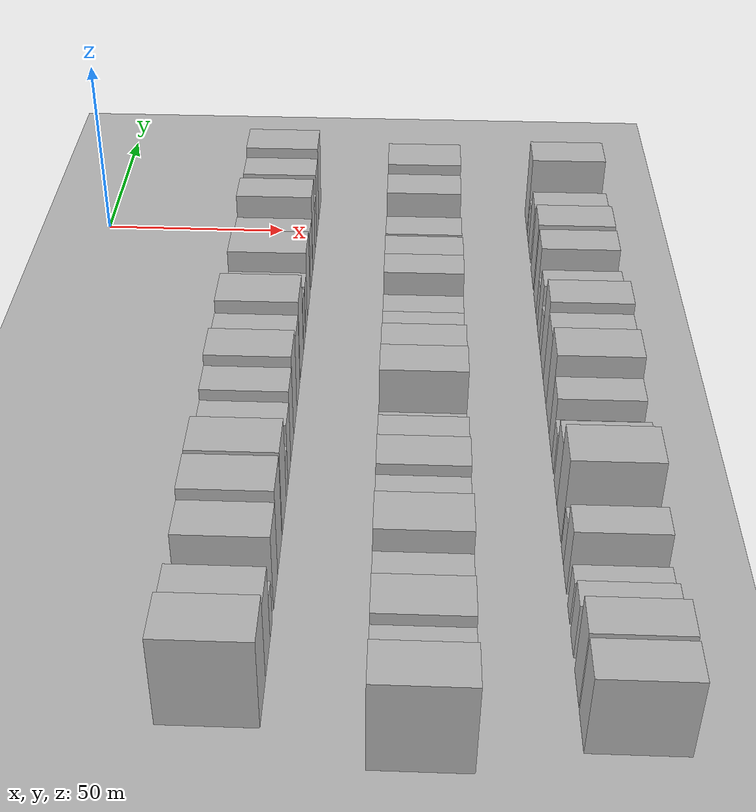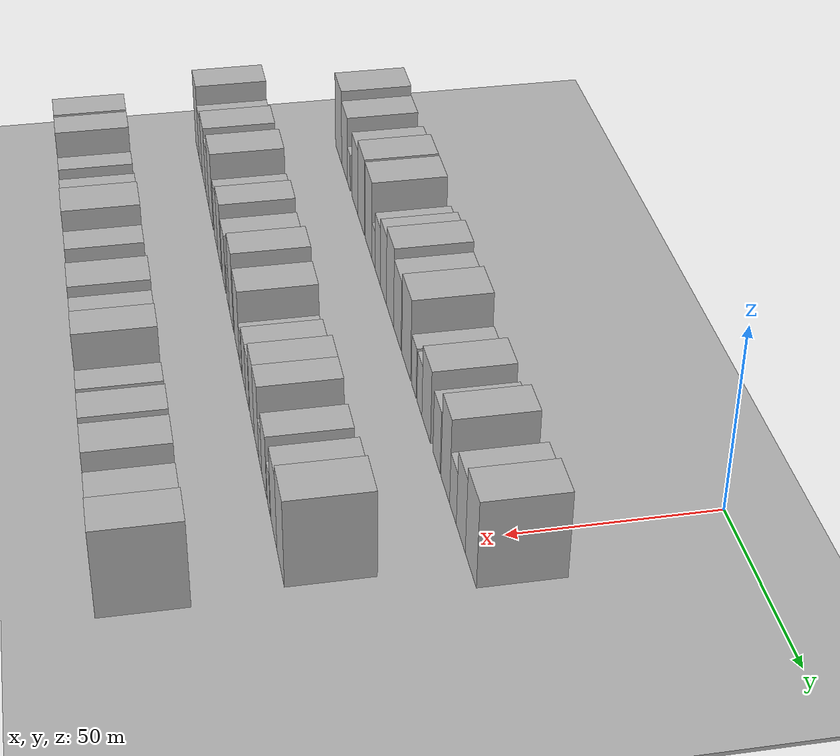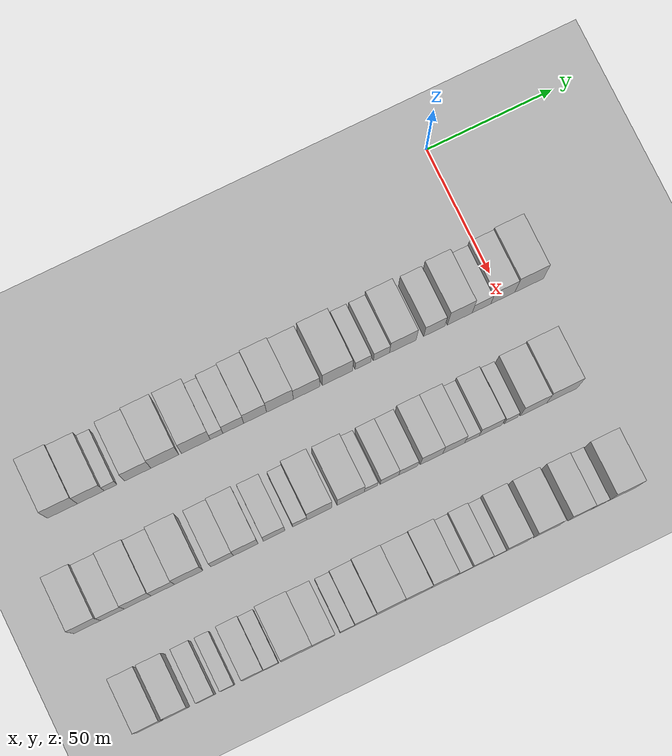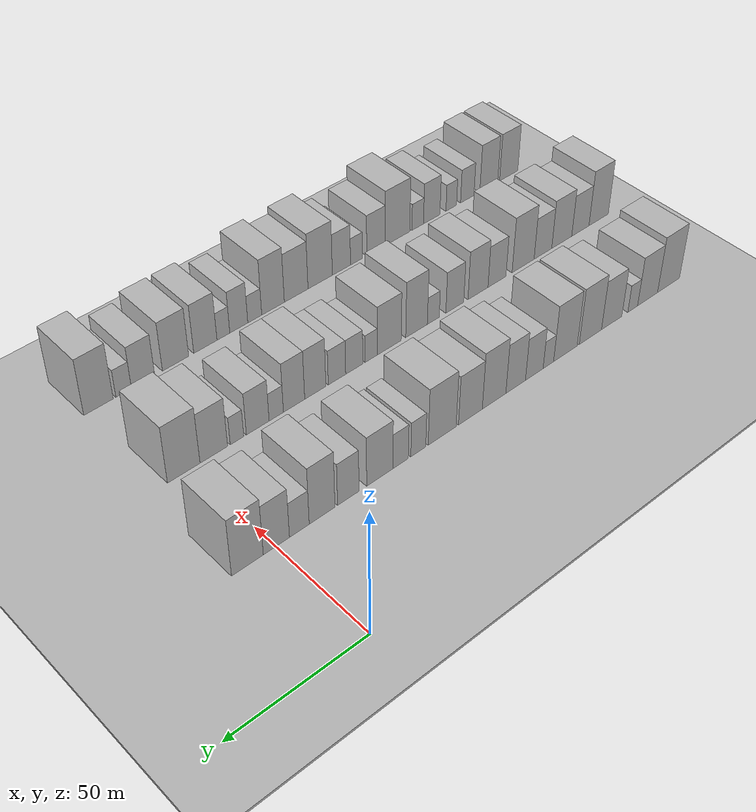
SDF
<sdf version="1.6">
 <world name="default">
  <include><name>ground_plane_1</name><uri>model://HANNAS_ground_plane</uri></include>
  <include>
   <name>ground_plane_2</name>
   <uri>model://HANNAS_ground_plane</uri>
   <pose>100 0 0  0 0 0</pose>
  </include>
  <model name="building_24">
   <static>1</static>
   <pose>50.0000 -170.7666 0 0.000000 0.000000 0.000000</pose>
   <link name="link">
    <pose>0 0 12.00 0 0 0</pose>
    <collision name="collision"><geometry><box><size>20.0000 11.4638 24.0000</size></box></geometry></collision>
    <visual name="visual">
     <cast_shadows>0</cast_shadows>
     <geometry><box><size>20.0000 11.4638 24.0000</size></box></geometry>
     <material>
      <script>
       <uri>model://HANNAS_wall/materials/scripts</uri>
       <uri>model://HANNAS_wall/materials/textures</uri>
       <name>vrc/HANNAS_wall</name>
      </script>
     </material>
    </visual>
   </link>
  </model>
  <model name="building_25">
   <static>1</static>
   <pose>50.0000 -159.9259 0 0.000000 0.000000 0.000000</pose>
   <link name="link">
    <pose>0 0 10.50 0 0 0</pose>
    <collision name="collision"><geometry><box><size>20.0000 10.2175 21.0000</size></box></geometry></collision>
    <visual name="visual">
     <cast_shadows>0</cast_shadows>
     <geometry><box><size>20.0000 10.2175 21.0000</size></box></geometry>
     <material>
      <script>
       <uri>model://HANNAS_wall/materials/scripts</uri>
       <uri>model://HANNAS_wall/materials/textures</uri>
       <name>vrc/HANNAS_wall</name>
      </script>
     </material>
    </visual>
   </link>
  </model>
  <model name="building_26">
   <static>1</static>
   <pose>50.0000 -152.3563 0 0.000000 0.000000 0.000000</pose>
   <link name="link">
    <pose>0 0 6.00 0 0 0</pose>
    <collision name="collision"><geometry><box><size>20.0000 4.9218 12.0000</size></box></geometry></collision>
    <visual name="visual">
     <cast_shadows>0</cast_shadows>
     <geometry><box><size>20.0000 4.9218 12.0000</size></box></geometry>
     <material>
      <script>
       <uri>model://HANNAS_wall/materials/scripts</uri>
       <uri>model://HANNAS_wall/materials/textures</uri>
       <name>vrc/HANNAS_wall</name>
      </script>
     </material>
    </visual>
   </link>
  </model>
  <model name="building_27">
   <static>1</static>
   <pose>50.0000 -141.8743 0 0.000000 0.000000 0.000000</pose>
   <link name="link">
    <pose>0 0 10.50 0 0 0</pose>
    <collision name="collision"><geometry><box><size>20.0000 10.0421 21.0000</size></box></geometry></collision>
    <visual name="visual">
     <cast_shadows>0</cast_shadows>
     <geometry><box><size>20.0000 10.0421 21.0000</size></box></geometry>
     <material>
      <script>
       <uri>model://HANNAS_wall/materials/scripts</uri>
       <uri>model://HANNAS_wall/materials/textures</uri>
       <name>vrc/HANNAS_wall</name>
      </script>
     </material>
    </visual>
   </link>
  </model>
  <model name="building_28">
   <static>1</static>
   <pose>50.0000 -131.4665 0 0.000000 0.000000 0.000000</pose>
   <link name="link">
    <pose>0 0 12.00 0 0 0</pose>
    <collision name="collision"><geometry><box><size>20.0000 10.7736 24.0000</size></box></geometry></collision>
    <visual name="visual">
     <cast_shadows>0</cast_shadows>
     <geometry><box><size>20.0000 10.7736 24.0000</size></box></geometry>
     <material>
      <script>
       <uri>model://HANNAS_wall/materials/scripts</uri>
       <uri>model://HANNAS_wall/materials/textures</uri>
       <name>vrc/HANNAS_wall</name>
      </script>
     </material>
    </visual>
   </link>
  </model>
  <model name="building_29">
   <static>1</static>
   <pose>50.0000 -119.5319 0 0.000000 0.000000 0.000000</pose>
   <link name="link">
    <pose>0 0 12.00 0 0 0</pose>
    <collision name="collision"><geometry><box><size>20.0000 11.0957 24.0000</size></box></geometry></collision>
    <visual name="visual">
     <cast_shadows>0</cast_shadows>
     <geometry><box><size>20.0000 11.0957 24.0000</size></box></geometry>
     <material>
      <script>
       <uri>model://HANNAS_wall/materials/scripts</uri>
       <uri>model://HANNAS_wall/materials/textures</uri>
       <name>vrc/HANNAS_wall</name>
      </script>
     </material>
    </visual>
   </link>
  </model>
  <model name="building_30">
   <static>1</static>
   <pose>50.0000 -111.5464 0 0.000000 0.000000 0.000000</pose>
   <link name="link">
    <pose>0 0 6.00 0 0 0</pose>
    <collision name="collision"><geometry><box><size>20.0000 4.8752 12.0000</size></box></geometry></collision>
    <visual name="visual">
     <cast_shadows>0</cast_shadows>
     <geometry><box><size>20.0000 4.8752 12.0000</size></box></geometry>
     <material>
      <script>
       <uri>model://HANNAS_wall/materials/scripts</uri>
       <uri>model://HANNAS_wall/materials/textures</uri>
       <name>vrc/HANNAS_wall</name>
      </script>
     </material>
    </visual>
   </link>
  </model>
  <model name="building_31">
   <static>1</static>
   <pose>50.0000 -105.0671 0 0.000000 0.000000 0.000000</pose>
   <link name="link">
    <pose>0 0 9.00 0 0 0</pose>
    <collision name="collision"><geometry><box><size>20.0000 8.0835 18.0000</size></box></geometry></collision>
    <visual name="visual">
     <cast_shadows>0</cast_shadows>
     <geometry><box><size>20.0000 8.0835 18.0000</size></box></geometry>
     <material>
      <script>
       <uri>model://HANNAS_wall/materials/scripts</uri>
       <uri>model://HANNAS_wall/materials/textures</uri>
       <name>vrc/HANNAS_wall</name>
      </script>
     </material>
    </visual>
   </link>
  </model>
  <model name="building_32">
   <static>1</static>
   <pose>50.0000 -96.6124 0 0.000000 0.000000 0.000000</pose>
   <link name="link">
    <pose>0 0 10.50 0 0 0</pose>
    <collision name="collision"><geometry><box><size>20.0000 8.8259 21.0000</size></box></geometry></collision>
    <visual name="visual">
     <cast_shadows>0</cast_shadows>
     <geometry><box><size>20.0000 8.8259 21.0000</size></box></geometry>
     <material>
      <script>
       <uri>model://HANNAS_wall/materials/scripts</uri>
       <uri>model://HANNAS_wall/materials/textures</uri>
       <name>vrc/HANNAS_wall</name>
      </script>
     </material>
    </visual>
   </link>
  </model>
  <model name="building_33">
   <static>1</static>
   <pose>50.0000 -87.0101 0 0.000000 0.000000 0.000000</pose>
   <link name="link">
    <pose>0 0 12.00 0 0 0</pose>
    <collision name="collision"><geometry><box><size>20.0000 10.3787 24.0000</size></box></geometry></collision>
    <visual name="visual">
     <cast_shadows>0</cast_shadows>
     <geometry><box><size>20.0000 10.3787 24.0000</size></box></geometry>
     <material>
      <script>
       <uri>model://HANNAS_wall/materials/scripts</uri>
       <uri>model://HANNAS_wall/materials/textures</uri>
       <name>vrc/HANNAS_wall</name>
      </script>
     </material>
    </visual>
   </link>
  </model>
  <model name="building_34">
   <static>1</static>
   <pose>50.0000 -76.6844 0 0.000000 0.000000 0.000000</pose>
   <link name="link">
    <pose>0 0 10.50 0 0 0</pose>
    <collision name="collision"><geometry><box><size>20.0000 10.2727 21.0000</size></box></geometry></collision>
    <visual name="visual">
     <cast_shadows>0</cast_shadows>
     <geometry><box><size>20.0000 10.2727 21.0000</size></box></geometry>
     <material>
      <script>
       <uri>model://HANNAS_wall/materials/scripts</uri>
       <uri>model://HANNAS_wall/materials/textures</uri>
       <name>vrc/HANNAS_wall</name>
      </script>
     </material>
    </visual>
   </link>
  </model>
  <model name="building_35">
   <static>1</static>
   <pose>50.0000 -64.6732 0 0.000000 0.000000 0.000000</pose>
   <link name="link">
    <pose>0 0 12.00 0 0 0</pose>
    <collision name="collision"><geometry><box><size>20.0000 11.7496 24.0000</size></box></geometry></collision>
    <visual name="visual">
     <cast_shadows>0</cast_shadows>
     <geometry><box><size>20.0000 11.7496 24.0000</size></box></geometry>
     <material>
      <script>
       <uri>model://HANNAS_wall/materials/scripts</uri>
       <uri>model://HANNAS_wall/materials/textures</uri>
       <name>vrc/HANNAS_wall</name>
      </script>
     </material>
    </visual>
   </link>
  </model>
  <model name="building_36">
   <static>1</static>
   <pose>50.0000 -54.7265 0 0.000000 0.000000 0.000000</pose>
   <link name="link">
    <pose>0 0 7.50 0 0 0</pose>
    <collision name="collision"><geometry><box><size>20.0000 6.1438 15.0000</size></box></geometry></collision>
    <visual name="visual">
     <cast_shadows>0</cast_shadows>
     <geometry><box><size>20.0000 6.1438 15.0000</size></box></geometry>
     <material>
      <script>
       <uri>model://HANNAS_wall/materials/scripts</uri>
       <uri>model://HANNAS_wall/materials/textures</uri>
       <name>vrc/HANNAS_wall</name>
      </script>
     </material>
    </visual>
   </link>
  </model>
  <model name="building_37">
   <static>1</static>
   <pose>50.0000 -47.5194 0 0.000000 0.000000 0.000000</pose>
   <link name="link">
    <pose>0 0 7.50 0 0 0</pose>
    <collision name="collision"><geometry><box><size>20.0000 6.2705 15.0000</size></box></geometry></collision>
    <visual name="visual">
     <cast_shadows>0</cast_shadows>
     <geometry><box><size>20.0000 6.2705 15.0000</size></box></geometry>
     <material>
      <script>
       <uri>model://HANNAS_wall/materials/scripts</uri>
       <uri>model://HANNAS_wall/materials/textures</uri>
       <name>vrc/HANNAS_wall</name>
      </script>
     </material>
    </visual>
   </link>
  </model>
  <model name="building_38">
   <static>1</static>
   <pose>50.0000 -39.1840 0 0.000000 0.000000 0.000000</pose>
   <link name="link">
    <pose>0 0 10.50 0 0 0</pose>
    <collision name="collision"><geometry><box><size>20.0000 10.4003 21.0000</size></box></geometry></collision>
    <visual name="visual">
     <cast_shadows>0</cast_shadows>
     <geometry><box><size>20.0000 10.4003 21.0000</size></box></geometry>
     <material>
      <script>
       <uri>model://HANNAS_wall/materials/scripts</uri>
       <uri>model://HANNAS_wall/materials/textures</uri>
       <name>vrc/HANNAS_wall</name>
      </script>
     </material>
    </visual>
   </link>
  </model>
  <model name="building_39">
   <static>1</static>
   <pose>50.0000 -26.8468 0 0.000000 0.000000 0.000000</pose>
   <link name="link">
    <pose>0 0 9.00 0 0 0</pose>
    <collision name="collision"><geometry><box><size>20.0000 8.2742 18.0000</size></box></geometry></collision>
    <visual name="visual">
     <cast_shadows>0</cast_shadows>
     <geometry><box><size>20.0000 8.2742 18.0000</size></box></geometry>
     <material>
      <script>
       <uri>model://HANNAS_wall/materials/scripts</uri>
       <uri>model://HANNAS_wall/materials/textures</uri>
       <name>vrc/HANNAS_wall</name>
      </script>
     </material>
    </visual>
   </link>
  </model>
  <model name="building_40">
   <static>1</static>
   <pose>50.0000 -16.8517 0 0.000000 0.000000 0.000000</pose>
   <link name="link">
    <pose>0 0 12.00 0 0 0</pose>
    <collision name="collision"><geometry><box><size>20.0000 9.7160 24.0000</size></box></geometry></collision>
    <visual name="visual">
     <cast_shadows>0</cast_shadows>
     <geometry><box><size>20.0000 9.7160 24.0000</size></box></geometry>
     <material>
      <script>
       <uri>model://HANNAS_wall/materials/scripts</uri>
       <uri>model://HANNAS_wall/materials/textures</uri>
       <name>vrc/HANNAS_wall</name>
      </script>
     </material>
    </visual>
   </link>
  </model>
  <model name="building_41">
   <static>1</static>
   <pose>50.0000 -8.3444 0 0.000000 0.000000 0.000000</pose>
   <link name="link">
    <pose>0 0 7.50 0 0 0</pose>
    <collision name="collision"><geometry><box><size>20.0000 7.2987 15.0000</size></box></geometry></collision>
    <visual name="visual">
     <cast_shadows>0</cast_shadows>
     <geometry><box><size>20.0000 7.2987 15.0000</size></box></geometry>
     <material>
      <script>
       <uri>model://HANNAS_wall/materials/scripts</uri>
       <uri>model://HANNAS_wall/materials/textures</uri>
       <name>vrc/HANNAS_wall</name>
      </script>
     </material>
    </visual>
   </link>
  </model>
  <model name="building_42">
   <static>1</static>
   <pose>50.0000 0.0549 0 0.000000 0.000000 0.000000</pose>
   <link name="link">
    <pose>0 0 10.50 0 0 0</pose>
    <collision name="collision"><geometry><box><size>20.0000 9.4999 21.0000</size></box></geometry></collision>
    <visual name="visual">
     <cast_shadows>0</cast_shadows>
     <geometry><box><size>20.0000 9.4999 21.0000</size></box></geometry>
     <material>
      <script>
       <uri>model://HANNAS_wall/materials/scripts</uri>
       <uri>model://HANNAS_wall/materials/textures</uri>
       <name>vrc/HANNAS_wall</name>
      </script>
     </material>
    </visual>
   </link>
  </model>
  <model name="building_43">
   <static>1</static>
   <pose>50.0000 10.4526 0 0.000000 0.000000 0.000000</pose>
   <link name="link">
    <pose>0 0 12.00 0 0 0</pose>
    <collision name="collision"><geometry><box><size>20.0000 11.2954 24.0000</size></box></geometry></collision>
    <visual name="visual">
     <cast_shadows>0</cast_shadows>
     <geometry><box><size>20.0000 11.2954 24.0000</size></box></geometry>
     <material>
      <script>
       <uri>model://HANNAS_wall/materials/scripts</uri>
       <uri>model://HANNAS_wall/materials/textures</uri>
       <name>vrc/HANNAS_wall</name>
      </script>
     </material>
    </visual>
   </link>
  </model>
  <model name="building_105">
   <static>1</static>
   <pose>90.0000 -179.9731 0 0.000000 0.000000 0.000000</pose>
   <link name="link">
    <pose>0 0 12.00 0 0 0</pose>
    <collision name="collision"><geometry><box><size>20.0000 10.2423 24.0000</size></box></geometry></collision>
    <visual name="visual">
     <cast_shadows>0</cast_shadows>
     <geometry><box><size>20.0000 10.2423 24.0000</size></box></geometry>
     <material>
      <script>
       <uri>model://HANNAS_wall/materials/scripts</uri>
       <uri>model://HANNAS_wall/materials/textures</uri>
       <name>vrc/HANNAS_wall</name>
      </script>
     </material>
    </visual>
   </link>
  </model>
  <model name="building_106">
   <static>1</static>
   <pose>90.0000 -170.3654 0 0.000000 0.000000 0.000000</pose>
   <link name="link">
    <pose>0 0 9.00 0 0 0</pose>
    <collision name="collision"><geometry><box><size>20.0000 8.9731 18.0000</size></box></geometry></collision>
    <visual name="visual">
     <cast_shadows>0</cast_shadows>
     <geometry><box><size>20.0000 8.9731 18.0000</size></box></geometry>
     <material>
      <script>
       <uri>model://HANNAS_wall/materials/scripts</uri>
       <uri>model://HANNAS_wall/materials/textures</uri>
       <name>vrc/HANNAS_wall</name>
      </script>
     </material>
    </visual>
   </link>
  </model>
  <model name="building_107">
   <static>1</static>
   <pose>90.0000 -160.7550 0 0.000000 0.000000 0.000000</pose>
   <link name="link">
    <pose>0 0 10.50 0 0 0</pose>
    <collision name="collision"><geometry><box><size>20.0000 10.2478 21.0000</size></box></geometry></collision>
    <visual name="visual">
     <cast_shadows>0</cast_shadows>
     <geometry><box><size>20.0000 10.2478 21.0000</size></box></geometry>
     <material>
      <script>
       <uri>model://HANNAS_wall/materials/scripts</uri>
       <uri>model://HANNAS_wall/materials/textures</uri>
       <name>vrc/HANNAS_wall</name>
      </script>
     </material>
    </visual>
   </link>
  </model>
  <model name="building_108">
   <static>1</static>
   <pose>90.0000 -151.1889 0 0.000000 0.000000 0.000000</pose>
   <link name="link">
    <pose>0 0 9.00 0 0 0</pose>
    <collision name="collision"><geometry><box><size>20.0000 8.8845 18.0000</size></box></geometry></collision>
    <visual name="visual">
     <cast_shadows>0</cast_shadows>
     <geometry><box><size>20.0000 8.8845 18.0000</size></box></geometry>
     <material>
      <script>
       <uri>model://HANNAS_wall/materials/scripts</uri>
       <uri>model://HANNAS_wall/materials/textures</uri>
       <name>vrc/HANNAS_wall</name>
      </script>
     </material>
    </visual>
   </link>
  </model>
  <model name="building_109">
   <static>1</static>
   <pose>90.0000 -141.3131 0 0.000000 0.000000 0.000000</pose>
   <link name="link">
    <pose>0 0 12.00 0 0 0</pose>
    <collision name="collision"><geometry><box><size>20.0000 10.8669 24.0000</size></box></geometry></collision>
    <visual name="visual">
     <cast_shadows>0</cast_shadows>
     <geometry><box><size>20.0000 10.8669 24.0000</size></box></geometry>
     <material>
      <script>
       <uri>model://HANNAS_wall/materials/scripts</uri>
       <uri>model://HANNAS_wall/materials/textures</uri>
       <name>vrc/HANNAS_wall</name>
      </script>
     </material>
    </visual>
   </link>
  </model>
  <model name="building_110">
   <static>1</static>
   <pose>90.0000 -128.5545 0 0.000000 0.000000 0.000000</pose>
   <link name="link">
    <pose>0 0 9.00 0 0 0</pose>
    <collision name="collision"><geometry><box><size>20.0000 8.6504 18.0000</size></box></geometry></collision>
    <visual name="visual">
     <cast_shadows>0</cast_shadows>
     <geometry><box><size>20.0000 8.6504 18.0000</size></box></geometry>
     <material>
      <script>
       <uri>model://HANNAS_wall/materials/scripts</uri>
       <uri>model://HANNAS_wall/materials/textures</uri>
       <name>vrc/HANNAS_wall</name>
      </script>
     </material>
    </visual>
   </link>
  </model>
  <model name="building_111">
   <static>1</static>
   <pose>90.0000 -119.4966 0 0.000000 0.000000 0.000000</pose>
   <link name="link">
    <pose>0 0 10.50 0 0 0</pose>
    <collision name="collision"><geometry><box><size>20.0000 9.4654 21.0000</size></box></geometry></collision>
    <visual name="visual">
     <cast_shadows>0</cast_shadows>
     <geometry><box><size>20.0000 9.4654 21.0000</size></box></geometry>
     <material>
      <script>
       <uri>model://HANNAS_wall/materials/scripts</uri>
       <uri>model://HANNAS_wall/materials/textures</uri>
       <name>vrc/HANNAS_wall</name>
      </script>
     </material>
    </visual>
   </link>
  </model>
  <model name="building_112">
   <static>1</static>
   <pose>90.0000 -108.6212 0 0.000000 0.000000 0.000000</pose>
   <link name="link">
    <pose>0 0 9.00 0 0 0</pose>
    <collision name="collision"><geometry><box><size>20.0000 8.2855 18.0000</size></box></geometry></collision>
    <visual name="visual">
     <cast_shadows>0</cast_shadows>
     <geometry><box><size>20.0000 8.2855 18.0000</size></box></geometry>
     <material>
      <script>
       <uri>model://HANNAS_wall/materials/scripts</uri>
       <uri>model://HANNAS_wall/materials/textures</uri>
       <name>vrc/HANNAS_wall</name>
      </script>
     </material>
    </visual>
   </link>
  </model>
  <model name="building_113">
   <static>1</static>
   <pose>90.0000 -98.7568 0 0.000000 0.000000 0.000000</pose>
   <link name="link">
    <pose>0 0 6.00 0 0 0</pose>
    <collision name="collision"><geometry><box><size>20.0000 5.4432 12.0000</size></box></geometry></collision>
    <visual name="visual">
     <cast_shadows>0</cast_shadows>
     <geometry><box><size>20.0000 5.4432 12.0000</size></box></geometry>
     <material>
      <script>
       <uri>model://HANNAS_wall/materials/scripts</uri>
       <uri>model://HANNAS_wall/materials/textures</uri>
       <name>vrc/HANNAS_wall</name>
      </script>
     </material>
    </visual>
   </link>
  </model>
  <model name="building_114">
   <static>1</static>
   <pose>90.0000 -91.2025 0 0.000000 0.000000 0.000000</pose>
   <link name="link">
    <pose>0 0 12.00 0 0 0</pose>
    <collision name="collision"><geometry><box><size>20.0000 9.6654 24.0000</size></box></geometry></collision>
    <visual name="visual">
     <cast_shadows>0</cast_shadows>
     <geometry><box><size>20.0000 9.6654 24.0000</size></box></geometry>
     <material>
      <script>
       <uri>model://HANNAS_wall/materials/scripts</uri>
       <uri>model://HANNAS_wall/materials/textures</uri>
       <name>vrc/HANNAS_wall</name>
      </script>
     </material>
    </visual>
   </link>
  </model>
  <model name="building_115">
   <static>1</static>
   <pose>90.0000 -79.1202 0 0.000000 0.000000 0.000000</pose>
   <link name="link">
    <pose>0 0 10.50 0 0 0</pose>
    <collision name="collision"><geometry><box><size>20.0000 10.4991 21.0000</size></box></geometry></collision>
    <visual name="visual">
     <cast_shadows>0</cast_shadows>
     <geometry><box><size>20.0000 10.4991 21.0000</size></box></geometry>
     <material>
      <script>
       <uri>model://HANNAS_wall/materials/scripts</uri>
       <uri>model://HANNAS_wall/materials/textures</uri>
       <name>vrc/HANNAS_wall</name>
      </script>
     </material>
    </visual>
   </link>
  </model>
  <model name="building_116">
   <static>1</static>
   <pose>90.0000 -71.3056 0 0.000000 0.000000 0.000000</pose>
   <link name="link">
    <pose>0 0 6.00 0 0 0</pose>
    <collision name="collision"><geometry><box><size>20.0000 5.1300 12.0000</size></box></geometry></collision>
    <visual name="visual">
     <cast_shadows>0</cast_shadows>
     <geometry><box><size>20.0000 5.1300 12.0000</size></box></geometry>
     <material>
      <script>
       <uri>model://HANNAS_wall/materials/scripts</uri>
       <uri>model://HANNAS_wall/materials/textures</uri>
       <name>vrc/HANNAS_wall</name>
      </script>
     </material>
    </visual>
   </link>
  </model>
  <model name="building_117">
   <static>1</static>
   <pose>90.0000 -64.1080 0 0.000000 0.000000 0.000000</pose>
   <link name="link">
    <pose>0 0 7.50 0 0 0</pose>
    <collision name="collision"><geometry><box><size>20.0000 7.2653 15.0000</size></box></geometry></collision>
    <visual name="visual">
     <cast_shadows>0</cast_shadows>
     <geometry><box><size>20.0000 7.2653 15.0000</size></box></geometry>
     <material>
      <script>
       <uri>model://HANNAS_wall/materials/scripts</uri>
       <uri>model://HANNAS_wall/materials/textures</uri>
       <name>vrc/HANNAS_wall</name>
      </script>
     </material>
    </visual>
   </link>
  </model>
  <model name="building_118">
   <static>1</static>
   <pose>90.0000 -56.8480 0 0.000000 0.000000 0.000000</pose>
   <link name="link">
    <pose>0 0 7.50 0 0 0</pose>
    <collision name="collision"><geometry><box><size>20.0000 7.2545 15.0000</size></box></geometry></collision>
    <visual name="visual">
     <cast_shadows>0</cast_shadows>
     <geometry><box><size>20.0000 7.2545 15.0000</size></box></geometry>
     <material>
      <script>
       <uri>model://HANNAS_wall/materials/scripts</uri>
       <uri>model://HANNAS_wall/materials/textures</uri>
       <name>vrc/HANNAS_wall</name>
      </script>
     </material>
    </visual>
   </link>
  </model>
  <model name="building_119">
   <static>1</static>
   <pose>90.0000 -47.8981 0 0.000000 0.000000 0.000000</pose>
   <link name="link">
    <pose>0 0 10.50 0 0 0</pose>
    <collision name="collision"><geometry><box><size>20.0000 8.6453 21.0000</size></box></geometry></collision>
    <visual name="visual">
     <cast_shadows>0</cast_shadows>
     <geometry><box><size>20.0000 8.6453 21.0000</size></box></geometry>
     <material>
      <script>
       <uri>model://HANNAS_wall/materials/scripts</uri>
       <uri>model://HANNAS_wall/materials/textures</uri>
       <name>vrc/HANNAS_wall</name>
      </script>
     </material>
    </visual>
   </link>
  </model>
  <model name="building_120">
   <static>1</static>
   <pose>90.0000 -39.2958 0 0.000000 0.000000 0.000000</pose>
   <link name="link">
    <pose>0 0 10.50 0 0 0</pose>
    <collision name="collision"><geometry><box><size>20.0000 8.5592 21.0000</size></box></geometry></collision>
    <visual name="visual">
     <cast_shadows>0</cast_shadows>
     <geometry><box><size>20.0000 8.5592 21.0000</size></box></geometry>
     <material>
      <script>
       <uri>model://HANNAS_wall/materials/scripts</uri>
       <uri>model://HANNAS_wall/materials/textures</uri>
       <name>vrc/HANNAS_wall</name>
      </script>
     </material>
    </visual>
   </link>
  </model>
  <model name="building_121">
   <static>1</static>
   <pose>90.0000 -32.1870 0 0.000000 0.000000 0.000000</pose>
   <link name="link">
    <pose>0 0 6.00 0 0 0</pose>
    <collision name="collision"><geometry><box><size>20.0000 5.6585 12.0000</size></box></geometry></collision>
    <visual name="visual">
     <cast_shadows>0</cast_shadows>
     <geometry><box><size>20.0000 5.6585 12.0000</size></box></geometry>
     <material>
      <script>
       <uri>model://HANNAS_wall/materials/scripts</uri>
       <uri>model://HANNAS_wall/materials/textures</uri>
       <name>vrc/HANNAS_wall</name>
      </script>
     </material>
    </visual>
   </link>
  </model>
  <model name="building_122">
   <static>1</static>
   <pose>90.0000 -24.9204 0 0.000000 0.000000 0.000000</pose>
   <link name="link">
    <pose>0 0 9.00 0 0 0</pose>
    <collision name="collision"><geometry><box><size>20.0000 8.8747 18.0000</size></box></geometry></collision>
    <visual name="visual">
     <cast_shadows>0</cast_shadows>
     <geometry><box><size>20.0000 8.8747 18.0000</size></box></geometry>
     <material>
      <script>
       <uri>model://HANNAS_wall/materials/scripts</uri>
       <uri>model://HANNAS_wall/materials/textures</uri>
       <name>vrc/HANNAS_wall</name>
      </script>
     </material>
    </visual>
   </link>
  </model>
  <model name="building_123">
   <static>1</static>
   <pose>90.0000 -16.8955 0 0.000000 0.000000 0.000000</pose>
   <link name="link">
    <pose>0 0 6.00 0 0 0</pose>
    <collision name="collision"><geometry><box><size>20.0000 5.1751 12.0000</size></box></geometry></collision>
    <visual name="visual">
     <cast_shadows>0</cast_shadows>
     <geometry><box><size>20.0000 5.1751 12.0000</size></box></geometry>
     <material>
      <script>
       <uri>model://HANNAS_wall/materials/scripts</uri>
       <uri>model://HANNAS_wall/materials/textures</uri>
       <name>vrc/HANNAS_wall</name>
      </script>
     </material>
    </visual>
   </link>
  </model>
  <model name="building_124">
   <static>1</static>
   <pose>90.0000 -8.1299 0 0.000000 0.000000 0.000000</pose>
   <link name="link">
    <pose>0 0 10.50 0 0 0</pose>
    <collision name="collision"><geometry><box><size>20.0000 10.3562 21.0000</size></box></geometry></collision>
    <visual name="visual">
     <cast_shadows>0</cast_shadows>
     <geometry><box><size>20.0000 10.3562 21.0000</size></box></geometry>
     <material>
      <script>
       <uri>model://HANNAS_wall/materials/scripts</uri>
       <uri>model://HANNAS_wall/materials/textures</uri>
       <name>vrc/HANNAS_wall</name>
      </script>
     </material>
    </visual>
   </link>
  </model>
  <model name="building_125">
   <static>1</static>
   <pose>90.0000 3.0300 0 0.000000 0.000000 0.000000</pose>
   <link name="link">
    <pose>0 0 12.00 0 0 0</pose>
    <collision name="collision"><geometry><box><size>20.0000 11.9636 24.0000</size></box></geometry></collision>
    <visual name="visual">
     <cast_shadows>0</cast_shadows>
     <geometry><box><size>20.0000 11.9636 24.0000</size></box></geometry>
     <material>
      <script>
       <uri>model://HANNAS_wall/materials/scripts</uri>
       <uri>model://HANNAS_wall/materials/textures</uri>
       <name>vrc/HANNAS_wall</name>
      </script>
     </material>
    </visual>
   </link>
  </model>
  <model name="building_189">
   <static>1</static>
   <pose>130.0000 -174.9758 0 0.000000 0.000000 0.000000</pose>
   <link name="link">
    <pose>0 0 10.50 0 0 0</pose>
    <collision name="collision"><geometry><box><size>20.0000 9.5912 21.0000</size></box></geometry></collision>
    <visual name="visual">
     <cast_shadows>0</cast_shadows>
     <geometry><box><size>20.0000 9.5912 21.0000</size></box></geometry>
     <material>
      <script>
       <uri>model://HANNAS_wall/materials/scripts</uri>
       <uri>model://HANNAS_wall/materials/textures</uri>
       <name>vrc/HANNAS_wall</name>
      </script>
     </material>
    </visual>
   </link>
  </model>
  <model name="building_190">
   <static>1</static>
   <pose>130.0000 -164.5649 0 0.000000 0.000000 0.000000</pose>
   <link name="link">
    <pose>0 0 10.50 0 0 0</pose>
    <collision name="collision"><geometry><box><size>20.0000 9.2305 21.0000</size></box></geometry></collision>
    <visual name="visual">
     <cast_shadows>0</cast_shadows>
     <geometry><box><size>20.0000 9.2305 21.0000</size></box></geometry>
     <material>
      <script>
       <uri>model://HANNAS_wall/materials/scripts</uri>
       <uri>model://HANNAS_wall/materials/textures</uri>
       <name>vrc/HANNAS_wall</name>
      </script>
     </material>
    </visual>
   </link>
  </model>
  <model name="building_191">
   <static>1</static>
   <pose>130.0000 -153.5371 0 0.000000 0.000000 0.000000</pose>
   <link name="link">
    <pose>0 0 7.50 0 0 0</pose>
    <collision name="collision"><geometry><box><size>20.0000 6.8252 15.0000</size></box></geometry></collision>
    <visual name="visual">
     <cast_shadows>0</cast_shadows>
     <geometry><box><size>20.0000 6.8252 15.0000</size></box></geometry>
     <material>
      <script>
       <uri>model://HANNAS_wall/materials/scripts</uri>
       <uri>model://HANNAS_wall/materials/textures</uri>
       <name>vrc/HANNAS_wall</name>
      </script>
     </material>
    </visual>
   </link>
  </model>
  <model name="building_192">
   <static>1</static>
   <pose>130.0000 -145.4699 0 0.000000 0.000000 0.000000</pose>
   <link name="link">
    <pose>0 0 6.00 0 0 0</pose>
    <collision name="collision"><geometry><box><size>20.0000 5.3091 12.0000</size></box></geometry></collision>
    <visual name="visual">
     <cast_shadows>0</cast_shadows>
     <geometry><box><size>20.0000 5.3091 12.0000</size></box></geometry>
     <material>
      <script>
       <uri>model://HANNAS_wall/materials/scripts</uri>
       <uri>model://HANNAS_wall/materials/textures</uri>
       <name>vrc/HANNAS_wall</name>
      </script>
     </material>
    </visual>
   </link>
  </model>
  <model name="building_193">
   <static>1</static>
   <pose>130.0000 -135.7841 0 0.000000 0.000000 0.000000</pose>
   <link name="link">
    <pose>0 0 9.00 0 0 0</pose>
    <collision name="collision"><geometry><box><size>20.0000 8.0626 18.0000</size></box></geometry></collision>
    <visual name="visual">
     <cast_shadows>0</cast_shadows>
     <geometry><box><size>20.0000 8.0626 18.0000</size></box></geometry>
     <material>
      <script>
       <uri>model://HANNAS_wall/materials/scripts</uri>
       <uri>model://HANNAS_wall/materials/textures</uri>
       <name>vrc/HANNAS_wall</name>
      </script>
     </material>
    </visual>
   </link>
  </model>
  <model name="building_194">
   <static>1</static>
   <pose>130.0000 -128.9300 0 0.000000 0.000000 0.000000</pose>
   <link name="link">
    <pose>0 0 6.00 0 0 0</pose>
    <collision name="collision"><geometry><box><size>20.0000 5.6456 12.0000</size></box></geometry></collision>
    <visual name="visual">
     <cast_shadows>0</cast_shadows>
     <geometry><box><size>20.0000 5.6456 12.0000</size></box></geometry>
     <material>
      <script>
       <uri>model://HANNAS_wall/materials/scripts</uri>
       <uri>model://HANNAS_wall/materials/textures</uri>
       <name>vrc/HANNAS_wall</name>
      </script>
     </material>
    </visual>
   </link>
  </model>
  <model name="building_195">
   <static>1</static>
   <pose>130.0000 -119.2427 0 0.000000 0.000000 0.000000</pose>
   <link name="link">
    <pose>0 0 12.00 0 0 0</pose>
    <collision name="collision"><geometry><box><size>20.0000 11.7288 24.0000</size></box></geometry></collision>
    <visual name="visual">
     <cast_shadows>0</cast_shadows>
     <geometry><box><size>20.0000 11.7288 24.0000</size></box></geometry>
     <material>
      <script>
       <uri>model://HANNAS_wall/materials/scripts</uri>
       <uri>model://HANNAS_wall/materials/textures</uri>
       <name>vrc/HANNAS_wall</name>
      </script>
     </material>
    </visual>
   </link>
  </model>
  <model name="building_196">
   <static>1</static>
   <pose>130.0000 -109.0704 0 0.000000 0.000000 0.000000</pose>
   <link name="link">
    <pose>0 0 9.00 0 0 0</pose>
    <collision name="collision"><geometry><box><size>20.0000 8.6158 18.0000</size></box></geometry></collision>
    <visual name="visual">
     <cast_shadows>0</cast_shadows>
     <geometry><box><size>20.0000 8.6158 18.0000</size></box></geometry>
     <material>
      <script>
       <uri>model://HANNAS_wall/materials/scripts</uri>
       <uri>model://HANNAS_wall/materials/textures</uri>
       <name>vrc/HANNAS_wall</name>
      </script>
     </material>
    </visual>
   </link>
  </model>
  <model name="building_197">
   <static>1</static>
   <pose>130.0000 -100.0348 0 0.000000 0.000000 0.000000</pose>
   <link name="link">
    <pose>0 0 6.00 0 0 0</pose>
    <collision name="collision"><geometry><box><size>20.0000 5.4556 12.0000</size></box></geometry></collision>
    <visual name="visual">
     <cast_shadows>0</cast_shadows>
     <geometry><box><size>20.0000 5.4556 12.0000</size></box></geometry>
     <material>
      <script>
       <uri>model://HANNAS_wall/materials/scripts</uri>
       <uri>model://HANNAS_wall/materials/textures</uri>
       <name>vrc/HANNAS_wall</name>
      </script>
     </material>
    </visual>
   </link>
  </model>
  <model name="building_198">
   <static>1</static>
   <pose>130.0000 -93.1987 0 0.000000 0.000000 0.000000</pose>
   <link name="link">
    <pose>0 0 9.00 0 0 0</pose>
    <collision name="collision"><geometry><box><size>20.0000 8.2165 18.0000</size></box></geometry></collision>
    <visual name="visual">
     <cast_shadows>0</cast_shadows>
     <geometry><box><size>20.0000 8.2165 18.0000</size></box></geometry>
     <material>
      <script>
       <uri>model://HANNAS_wall/materials/scripts</uri>
       <uri>model://HANNAS_wall/materials/textures</uri>
       <name>vrc/HANNAS_wall</name>
      </script>
     </material>
    </visual>
   </link>
  </model>
  <model name="building_199">
   <static>1</static>
   <pose>130.0000 -83.6791 0 0.000000 0.000000 0.000000</pose>
   <link name="link">
    <pose>0 0 12.00 0 0 0</pose>
    <collision name="collision"><geometry><box><size>20.0000 10.8228 24.0000</size></box></geometry></collision>
    <visual name="visual">
     <cast_shadows>0</cast_shadows>
     <geometry><box><size>20.0000 10.8228 24.0000</size></box></geometry>
     <material>
      <script>
       <uri>model://HANNAS_wall/materials/scripts</uri>
       <uri>model://HANNAS_wall/materials/textures</uri>
       <name>vrc/HANNAS_wall</name>
      </script>
     </material>
    </visual>
   </link>
  </model>
  <model name="building_200">
   <static>1</static>
   <pose>130.0000 -73.1127 0 0.000000 0.000000 0.000000</pose>
   <link name="link">
    <pose>0 0 10.50 0 0 0</pose>
    <collision name="collision"><geometry><box><size>20.0000 10.3100 21.0000</size></box></geometry></collision>
    <visual name="visual">
     <cast_shadows>0</cast_shadows>
     <geometry><box><size>20.0000 10.3100 21.0000</size></box></geometry>
     <material>
      <script>
       <uri>model://HANNAS_wall/materials/scripts</uri>
       <uri>model://HANNAS_wall/materials/textures</uri>
       <name>vrc/HANNAS_wall</name>
      </script>
     </material>
    </visual>
   </link>
  </model>
  <model name="building_201">
   <static>1</static>
   <pose>130.0000 -63.1267 0 0.000000 0.000000 0.000000</pose>
   <link name="link">
    <pose>0 0 12.00 0 0 0</pose>
    <collision name="collision"><geometry><box><size>20.0000 9.6619 24.0000</size></box></geometry></collision>
    <visual name="visual">
     <cast_shadows>0</cast_shadows>
     <geometry><box><size>20.0000 9.6619 24.0000</size></box></geometry>
     <material>
      <script>
       <uri>model://HANNAS_wall/materials/scripts</uri>
       <uri>model://HANNAS_wall/materials/textures</uri>
       <name>vrc/HANNAS_wall</name>
      </script>
     </material>
    </visual>
   </link>
  </model>
  <model name="building_202">
   <static>1</static>
   <pose>130.0000 -55.3641 0 0.000000 0.000000 0.000000</pose>
   <link name="link">
    <pose>0 0 6.00 0 0 0</pose>
    <collision name="collision"><geometry><box><size>20.0000 5.8633 12.0000</size></box></geometry></collision>
    <visual name="visual">
     <cast_shadows>0</cast_shadows>
     <geometry><box><size>20.0000 5.8633 12.0000</size></box></geometry>
     <material>
      <script>
       <uri>model://HANNAS_wall/materials/scripts</uri>
       <uri>model://HANNAS_wall/materials/textures</uri>
       <name>vrc/HANNAS_wall</name>
      </script>
     </material>
    </visual>
   </link>
  </model>
  <model name="building_203">
   <static>1</static>
   <pose>130.0000 -48.6963 0 0.000000 0.000000 0.000000</pose>
   <link name="link">
    <pose>0 0 9.00 0 0 0</pose>
    <collision name="collision"><geometry><box><size>20.0000 7.4723 18.0000</size></box></geometry></collision>
    <visual name="visual">
     <cast_shadows>0</cast_shadows>
     <geometry><box><size>20.0000 7.4723 18.0000</size></box></geometry>
     <material>
      <script>
       <uri>model://HANNAS_wall/materials/scripts</uri>
       <uri>model://HANNAS_wall/materials/textures</uri>
       <name>vrc/HANNAS_wall</name>
      </script>
     </material>
    </visual>
   </link>
  </model>
  <model name="building_204">
   <static>1</static>
   <pose>130.0000 -42.3363 0 0.000000 0.000000 0.000000</pose>
   <link name="link">
    <pose>0 0 6.00 0 0 0</pose>
    <collision name="collision"><geometry><box><size>20.0000 5.2478 12.0000</size></box></geometry></collision>
    <visual name="visual">
     <cast_shadows>0</cast_shadows>
     <geometry><box><size>20.0000 5.2478 12.0000</size></box></geometry>
     <material>
      <script>
       <uri>model://HANNAS_wall/materials/scripts</uri>
       <uri>model://HANNAS_wall/materials/textures</uri>
       <name>vrc/HANNAS_wall</name>
      </script>
     </material>
    </visual>
   </link>
  </model>
  <model name="building_205">
   <static>1</static>
   <pose>130.0000 -35.0128 0 0.000000 0.000000 0.000000</pose>
   <link name="link">
    <pose>0 0 10.50 0 0 0</pose>
    <collision name="collision"><geometry><box><size>20.0000 9.3992 21.0000</size></box></geometry></collision>
    <visual name="visual">
     <cast_shadows>0</cast_shadows>
     <geometry><box><size>20.0000 9.3992 21.0000</size></box></geometry>
     <material>
      <script>
       <uri>model://HANNAS_wall/materials/scripts</uri>
       <uri>model://HANNAS_wall/materials/textures</uri>
       <name>vrc/HANNAS_wall</name>
      </script>
     </material>
    </visual>
   </link>
  </model>
  <model name="building_206">
   <static>1</static>
   <pose>130.0000 -23.1309 0 0.000000 0.000000 0.000000</pose>
   <link name="link">
    <pose>0 0 10.50 0 0 0</pose>
    <collision name="collision"><geometry><box><size>20.0000 10.3647 21.0000</size></box></geometry></collision>
    <visual name="visual">
     <cast_shadows>0</cast_shadows>
     <geometry><box><size>20.0000 10.3647 21.0000</size></box></geometry>
     <material>
      <script>
       <uri>model://HANNAS_wall/materials/scripts</uri>
       <uri>model://HANNAS_wall/materials/textures</uri>
       <name>vrc/HANNAS_wall</name>
      </script>
     </material>
    </visual>
   </link>
  </model>
  <model name="building_207">
   <static>1</static>
   <pose>130.0000 -10.4852 0 0.000000 0.000000 0.000000</pose>
   <link name="link">
    <pose>0 0 9.00 0 0 0</pose>
    <collision name="collision"><geometry><box><size>20.0000 8.9266 18.0000</size></box></geometry></collision>
    <visual name="visual">
     <cast_shadows>0</cast_shadows>
     <geometry><box><size>20.0000 8.9266 18.0000</size></box></geometry>
     <material>
      <script>
       <uri>model://HANNAS_wall/materials/scripts</uri>
       <uri>model://HANNAS_wall/materials/textures</uri>
       <name>vrc/HANNAS_wall</name>
      </script>
     </material>
    </visual>
   </link>
  </model>
  <model name="building_208">
   <static>1</static>
   <pose>130.0000 -3.0742 0 0.000000 0.000000 0.000000</pose>
   <link name="link">
    <pose>0 0 6.00 0 0 0</pose>
    <collision name="collision"><geometry><box><size>20.0000 5.8954 12.0000</size></box></geometry></collision>
    <visual name="visual">
     <cast_shadows>0</cast_shadows>
     <geometry><box><size>20.0000 5.8954 12.0000</size></box></geometry>
     <material>
      <script>
       <uri>model://HANNAS_wall/materials/scripts</uri>
       <uri>model://HANNAS_wall/materials/textures</uri>
       <name>vrc/HANNAS_wall</name>
      </script>
     </material>
    </visual>
   </link>
  </model>
  <model name="building_209">
   <static>1</static>
   <pose>130.0000 6.3363 0 0.000000 0.000000 0.000000</pose>
   <link name="link">
    <pose>0 0 12.00 0 0 0</pose>
    <collision name="collision"><geometry><box><size>20.0000 10.9257 24.0000</size></box></geometry></collision>
    <visual name="visual">
     <cast_shadows>0</cast_shadows>
     <geometry><box><size>20.0000 10.9257 24.0000</size></box></geometry>
     <material>
      <script>
       <uri>model://HANNAS_wall/materials/scripts</uri>
       <uri>model://HANNAS_wall/materials/textures</uri>
       <name>vrc/HANNAS_wall</name>
      </script>
     </material>
    </visual>
   </link>
  </model>
 </world>
</sdf>
